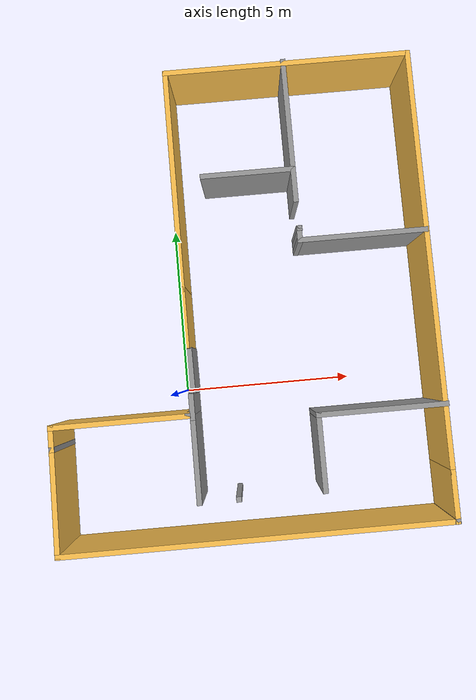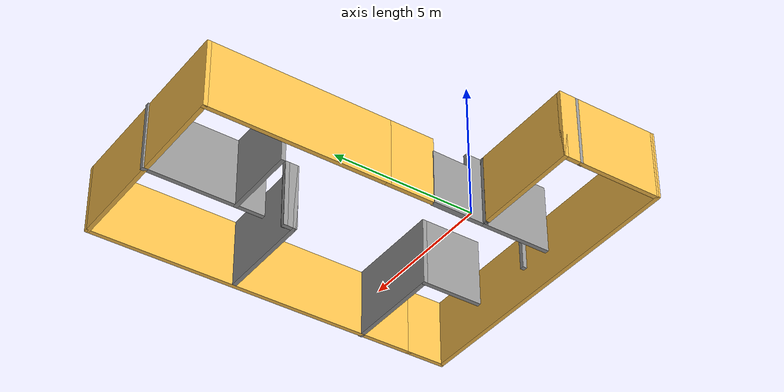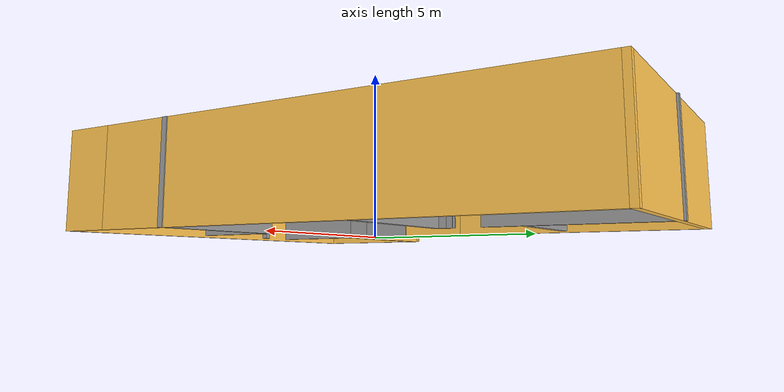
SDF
<?xml version='1.0'?>
<sdf version='1.7'>
  <model name='house-01'>
    <pose>1.82729 2.55161 0 0 -0 0</pose>
    <link name='Door_0'>
      <collision name='Door_0_Collision'>
        <geometry>
          <box>
            <size>1.32727 0.2 2</size>
          </box>
        </geometry>
        <pose>0 0 1 0 -0 0</pose>
      </collision>
      <visual name='Door_0_Visual'>
        <pose>0 0 1 0 -0 0</pose>
        <geometry>
          <box>
            <size>1.32727 0.2 2</size>
          </box>
        </geometry>
        <material>
          <script>
            <uri>file://media/materials/scripts/gazebo.material</uri>
            <name>Gazebo/Grey</name>
          </script>
        </material>
      </visual>
      <pose>-1.55494 -1.9552 0 0 -0 1.5797</pose>
    </link>
    <link name='Wall_0'>
      <collision name='Wall_0_Collision'>
        <geometry>
          <box>
            <size>3.05009 0.15 2.5</size>
          </box>
        </geometry>
        <pose>0 0 1.25 0 -0 0</pose>
      </collision>
      <visual name='Wall_0_Visual'>
        <pose>0 0 1.25 0 -0 0</pose>
        <geometry>
          <box>
            <size>3.05009 0.15 2.5</size>
          </box>
        </geometry>
        <material>
          <script>
            <uri>file://media/materials/scripts/gazebo.material</uri>
            <name>Gazebo/Grey</name>
          </script>
          <ambient>1 0.764706 0.305882 1</ambient>
        </material>
        <meta>
          <layer>0</layer>
        </meta>
      </visual>
      <pose>-5.55604 -5.30161 0 0 -0 -1.57855</pose>
    </link>
    <link name='Wall_1'>
      <collision name='Wall_1_Collision'>
        <geometry>
          <box>
            <size>11.25 0.15 2.5</size>
          </box>
        </geometry>
        <pose>0 0 1.25 0 -0 0</pose>
      </collision>
      <visual name='Wall_1_Visual'>
        <pose>0 0 1.25 0 -0 0</pose>
        <geometry>
          <box>
            <size>11.25 0.15 2.5</size>
          </box>
        </geometry>
        <material>
          <script>
            <uri>file://media/materials/scripts/gazebo.material</uri>
            <name>Gazebo/Grey</name>
          </script>
          <ambient>1 0.764706 0.305882 1</ambient>
        </material>
        <meta>
          <layer>0</layer>
        </meta>
      </visual>
      <pose>-0.017289 -6.75161 0 0 -0 0</pose>
    </link>
    <link name='Wall_19'>
      <collision name='Wall_19_Collision'>
        <geometry>
          <box>
            <size>7.25 0.15 2.5</size>
          </box>
        </geometry>
        <pose>0 0 1.25 0 -0 0</pose>
      </collision>
      <visual name='Wall_19_Visual'>
        <pose>0 0 1.25 0 -0 0</pose>
        <geometry>
          <box>
            <size>7.25 0.15 2.5</size>
          </box>
        </geometry>
        <material>
          <script>
            <uri>file://media/materials/scripts/gazebo.material</uri>
            <name>Gazebo/Grey</name>
          </script>
          <ambient>1 0.764706 0.305882 1</ambient>
        </material>
        <meta>
          <layer>0</layer>
        </meta>
      </visual>
      <pose>1.99271 6.69839 0 0 -0 3.14159</pose>
    </link>
    <link name='Wall_2'>
      <collision name='Wall_2_Collision'>
        <geometry>
          <box>
            <size>0.16 0.15 2.5</size>
          </box>
        </geometry>
        <pose>0 0 1.25 0 -0 0</pose>
      </collision>
      <visual name='Wall_2_Visual'>
        <pose>0 0 1.25 0 -0 0</pose>
        <geometry>
          <box>
            <size>0.16 0.15 2.5</size>
          </box>
        </geometry>
        <material>
          <script>
            <uri>file://media/materials/scripts/gazebo.material</uri>
            <name>Gazebo/Grey</name>
          </script>
          <ambient>1 1 1 1</ambient>
        </material>
        <meta>
          <layer>0</layer>
        </meta>
      </visual>
      <pose>5.53771 -6.75161 0 0 -0 0</pose>
    </link>
    <link name='Wall_20'>
      <collision name='Wall_20_Collision'>
        <geometry>
          <box>
            <size>6.5 0.15 2.5</size>
          </box>
        </geometry>
        <pose>0 0 1.25 0 -0 0</pose>
      </collision>
      <visual name='Wall_20_Visual'>
        <pose>0 0 1.25 0 -0 0</pose>
        <geometry>
          <box>
            <size>6.5 0.15 2.5</size>
          </box>
        </geometry>
        <material>
          <script>
            <uri>file://media/materials/scripts/gazebo.material</uri>
            <name>Gazebo/Grey</name>
          </script>
          <ambient>1 0.764706 0.305882 1</ambient>
        </material>
        <meta>
          <layer>0</layer>
        </meta>
      </visual>
      <pose>-1.55729 3.52339 0 0 -0 -1.5708</pose>
    </link>
    <link name='Wall_24'>
      <collision name='Wall_24_Collision'>
        <geometry>
          <box>
            <size>1.75 0.15 2.5</size>
          </box>
        </geometry>
        <pose>0 0 1.25 0 -0 0</pose>
      </collision>
      <visual name='Wall_24_Visual'>
        <pose>0 0 1.25 0 -0 0</pose>
        <geometry>
          <box>
            <size>1.75 0.15 2.5</size>
          </box>
        </geometry>
        <material>
          <script>
            <uri>file://media/materials/scripts/gazebo.material</uri>
            <name>Gazebo/Grey</name>
          </script>
          <ambient>1 0.764706 0.305882 1</ambient>
        </material>
        <meta>
          <layer>0</layer>
        </meta>
      </visual>
      <pose>-1.55729 -0.45161 0 0 -0 -1.5708</pose>
    </link>
    <link name='Wall_29'>
      <collision name='Wall_29_Collision'>
        <geometry>
          <box>
            <size>0.16 0.15 2.5</size>
          </box>
        </geometry>
        <pose>0 0 1.25 0 -0 0</pose>
      </collision>
      <visual name='Wall_29_Visual'>
        <pose>0 0 1.25 0 -0 0</pose>
        <geometry>
          <box>
            <size>0.16 0.15 2.5</size>
          </box>
        </geometry>
        <material>
          <script>
            <uri>file://media/materials/scripts/gazebo.material</uri>
            <name>Gazebo/Grey</name>
          </script>
          <ambient>0 0 0 1</ambient>
        </material>
        <meta>
          <layer>0</layer>
        </meta>
      </visual>
      <pose>-5.53979 -3.81786 0 0 -0 0</pose>
    </link>
    <link name='Wall_3'>
      <collision name='Wall_3_Collision'>
        <geometry>
          <box>
            <size>1.5 0.15 2.5</size>
          </box>
        </geometry>
        <pose>0 0 1.25 0 -0 0</pose>
      </collision>
      <visual name='Wall_3_Visual'>
        <pose>0 0 1.25 0 -0 0</pose>
        <geometry>
          <box>
            <size>1.5 0.15 2.5</size>
          </box>
        </geometry>
        <material>
          <script>
            <uri>file://media/materials/scripts/gazebo.material</uri>
            <name>Gazebo/Grey</name>
          </script>
          <ambient>1 0.764706 0.305882 1</ambient>
        </material>
        <meta>
          <layer>0</layer>
        </meta>
      </visual>
      <pose>5.54271 -6.07661 0 0 -0 1.5708</pose>
    </link>
    <link name='Wall_30'>
      <collision name='Wall_30_Collision'>
        <geometry>
          <box>
            <size>0.75 0.15 2.5</size>
          </box>
        </geometry>
        <pose>0 0 1.25 0 -0 0</pose>
      </collision>
      <visual name='Wall_30_Visual'>
        <pose>0 0 1.25 0 -0 0</pose>
        <geometry>
          <box>
            <size>0.75 0.15 2.5</size>
          </box>
        </geometry>
        <material>
          <script>
            <uri>file://media/materials/scripts/gazebo.material</uri>
            <name>Gazebo/Grey</name>
          </script>
          <ambient>1 0.764706 0.305882 1</ambient>
        </material>
        <meta>
          <layer>0</layer>
        </meta>
      </visual>
      <pose>-5.54479 -3.51786 0 0 -0 1.5708</pose>
    </link>
    <link name='Wall_31'>
      <collision name='Wall_31_Collision'>
        <geometry>
          <box>
            <size>4 0.15 2.5</size>
          </box>
        </geometry>
        <pose>0 0 1.25 0 -0 0</pose>
      </collision>
      <visual name='Wall_31_Visual'>
        <pose>0 0 1.25 0 -0 0</pose>
        <geometry>
          <box>
            <size>4 0.15 2.5</size>
          </box>
        </geometry>
        <material>
          <script>
            <uri>file://media/materials/scripts/gazebo.material</uri>
            <name>Gazebo/Grey</name>
          </script>
          <ambient>1 0.764706 0.305882 1</ambient>
        </material>
        <meta>
          <layer>0</layer>
        </meta>
      </visual>
      <pose>-3.61979 -3.21786 0 0 -0 0</pose>
    </link>
    <link name='Wall_32'>
      <collision name='Wall_32_Collision'>
        <geometry>
          <box>
            <size>0.15 0.15 2.5</size>
          </box>
        </geometry>
        <pose>0 0 1.25 0 -0 0</pose>
      </collision>
      <visual name='Wall_32_Visual'>
        <pose>0 0 1.25 0 -0 0</pose>
        <geometry>
          <box>
            <size>0.15 0.15 2.5</size>
          </box>
        </geometry>
        <material>
          <script>
            <uri>file://media/materials/scripts/gazebo.material</uri>
            <name>Gazebo/Grey</name>
          </script>
          <ambient>1 1 1 1</ambient>
        </material>
        <meta>
          <layer>0</layer>
        </meta>
      </visual>
      <pose>-1.69479 -3.21786 0 0 -0 0</pose>
    </link>
    <link name='Wall_33'>
      <collision name='Wall_33_Collision'>
        <geometry>
          <box>
            <size>0.16 0.15 2.5</size>
          </box>
        </geometry>
        <pose>0 0 1.25 0 -0 0</pose>
      </collision>
      <visual name='Wall_33_Visual'>
        <pose>0 0 1.25 0 -0 0</pose>
        <geometry>
          <box>
            <size>0.16 0.15 2.5</size>
          </box>
        </geometry>
        <material>
          <script>
            <uri>file://media/materials/scripts/gazebo.material</uri>
            <name>Gazebo/Grey</name>
          </script>
          <ambient>1 1 1 1</ambient>
        </material>
        <meta>
          <layer>0</layer>
        </meta>
      </visual>
      <pose>-1.68979 -3.21786 0 0 -0 0</pose>
    </link>
    <link name='Wall_34'>
      <collision name='Wall_34_Collision'>
        <geometry>
          <box>
            <size>0.16 0.15 2.5</size>
          </box>
        </geometry>
        <pose>0 0 1.25 0 -0 0</pose>
      </collision>
      <visual name='Wall_34_Visual'>
        <pose>0 0 1.25 0 -0 0</pose>
        <geometry>
          <box>
            <size>0.16 0.15 2.5</size>
          </box>
        </geometry>
        <material>
          <script>
            <uri>file://media/materials/scripts/gazebo.material</uri>
            <name>Gazebo/Grey</name>
          </script>
          <ambient>0 0 0 1</ambient>
        </material>
        <meta>
          <layer>0</layer>
        </meta>
      </visual>
      <pose>-1.68979 -3.21786 0 0 -0 3.14159</pose>
    </link>
    <link name='Wall_37'>
      <collision name='Wall_37_Collision'>
        <geometry>
          <box>
            <size>0.75 0.15 2.5</size>
          </box>
        </geometry>
        <pose>0 0 1.25 0 -0 0</pose>
      </collision>
      <visual name='Wall_37_Visual'>
        <pose>0 0 1.25 0 -0 0</pose>
        <geometry>
          <box>
            <size>0.75 0.15 2.5</size>
          </box>
        </geometry>
        <material>
          <script>
            <uri>file://media/materials/scripts/gazebo.material</uri>
            <name>Gazebo/Grey</name>
          </script>
          <ambient>1 1 1 1</ambient>
        </material>
        <meta>
          <layer>0</layer>
        </meta>
      </visual>
      <pose>-1.55003 -2.97301 0 0 -0 -1.5708</pose>
    </link>
    <link name='Wall_4'>
      <collision name='Wall_4_Collision'>
        <geometry>
          <box>
            <size>12.25 0.15 2.5</size>
          </box>
        </geometry>
        <pose>0 0 1.25 0 -0 0</pose>
      </collision>
      <visual name='Wall_4_Visual'>
        <pose>0 0 1.25 0 -0 0</pose>
        <geometry>
          <box>
            <size>12.25 0.15 2.5</size>
          </box>
        </geometry>
        <material>
          <script>
            <uri>file://media/materials/scripts/gazebo.material</uri>
            <name>Gazebo/Grey</name>
          </script>
          <ambient>1 0.764706 0.305882 1</ambient>
        </material>
        <meta>
          <layer>0</layer>
        </meta>
      </visual>
      <pose>5.54271 0.64839 0 0 -0 1.5708</pose>
    </link>
    <link name='Wall_41'>
      <collision name='Wall_41_Collision'>
        <geometry>
          <box>
            <size>2.5 0.15 2.5</size>
          </box>
        </geometry>
        <pose>0 0 1.25 0 -0 0</pose>
      </collision>
      <visual name='Wall_41_Visual'>
        <pose>0 0 1.25 0 -0 0</pose>
        <geometry>
          <box>
            <size>2.5 0.15 2.5</size>
          </box>
        </geometry>
        <material>
          <script>
            <uri>file://media/materials/scripts/gazebo.material</uri>
            <name>Gazebo/Grey</name>
          </script>
          <ambient>1 1 1 1</ambient>
        </material>
        <meta>
          <layer>0</layer>
        </meta>
      </visual>
      <pose>-1.55003 -4.44801 0 0 -0 -1.5708</pose>
    </link>
    <link name='Wall_43'>
      <collision name='Wall_43_Collision'>
        <geometry>
          <box>
            <size>0.15 0.15 2.5</size>
          </box>
        </geometry>
        <pose>0 0 1.25 0 -0 0</pose>
      </collision>
      <visual name='Wall_43_Visual'>
        <pose>0 0 1.25 0 -0 0</pose>
        <geometry>
          <box>
            <size>0.15 0.15 2.5</size>
          </box>
        </geometry>
        <material>
          <script>
            <uri>file://media/materials/scripts/gazebo.material</uri>
            <name>Gazebo/Grey</name>
          </script>
          <ambient>1 1 1 1</ambient>
        </material>
        <meta>
          <layer>0</layer>
        </meta>
      </visual>
      <pose>-0.450029 -5.62301 0 0 -0 0</pose>
    </link>
    <link name='Wall_48'>
      <collision name='Wall_48_Collision'>
        <geometry>
          <box>
            <size>3.75 0.15 2.5</size>
          </box>
        </geometry>
        <pose>0 0 1.25 0 -0 0</pose>
      </collision>
      <visual name='Wall_48_Visual'>
        <pose>0 0 1.25 0 -0 0</pose>
        <geometry>
          <box>
            <size>3.75 0.15 2.5</size>
          </box>
        </geometry>
        <material>
          <script>
            <uri>file://media/materials/scripts/gazebo.material</uri>
            <name>Gazebo/Grey</name>
          </script>
          <ambient>1 1 1 1</ambient>
        </material>
        <meta>
          <layer>0</layer>
        </meta>
      </visual>
      <pose>3.76787 -3.50356 0 0 -0 3.14159</pose>
    </link>
    <link name='Wall_49'>
      <collision name='Wall_49_Collision'>
        <geometry>
          <box>
            <size>2.25 0.15 2.5</size>
          </box>
        </geometry>
        <pose>0 0 1.25 0 -0 0</pose>
      </collision>
      <visual name='Wall_49_Visual'>
        <pose>0 0 1.25 0 -0 0</pose>
        <geometry>
          <box>
            <size>2.25 0.15 2.5</size>
          </box>
        </geometry>
        <material>
          <script>
            <uri>file://media/materials/scripts/gazebo.material</uri>
            <name>Gazebo/Grey</name>
          </script>
          <ambient>1 1 1 1</ambient>
        </material>
        <meta>
          <layer>0</layer>
        </meta>
      </visual>
      <pose>1.96787 -4.55356 0 0 -0 -1.5708</pose>
    </link>
    <link name='Wall_51'>
      <collision name='Wall_51_Collision'>
        <geometry>
          <box>
            <size>3.75 0.15 2.5</size>
          </box>
        </geometry>
        <pose>0 0 1.25 0 -0 0</pose>
      </collision>
      <visual name='Wall_51_Visual'>
        <pose>0 0 1.25 0 -0 0</pose>
        <geometry>
          <box>
            <size>3.75 0.15 2.5</size>
          </box>
        </geometry>
        <material>
          <script>
            <uri>file://media/materials/scripts/gazebo.material</uri>
            <name>Gazebo/Grey</name>
          </script>
          <ambient>1 1 1 1</ambient>
        </material>
        <meta>
          <layer>0</layer>
        </meta>
      </visual>
      <pose>3.71271 1.46811 0 0 -0 3.14159</pose>
    </link>
    <link name='Wall_52'>
      <collision name='Wall_52_Collision'>
        <geometry>
          <box>
            <size>0.5 0.15 2.5</size>
          </box>
        </geometry>
        <pose>0 0 1.25 0 -0 0</pose>
      </collision>
      <visual name='Wall_52_Visual'>
        <pose>0 0 1.25 0 -0 0</pose>
        <geometry>
          <box>
            <size>0.5 0.15 2.5</size>
          </box>
        </geometry>
        <material>
          <script>
            <uri>file://media/materials/scripts/gazebo.material</uri>
            <name>Gazebo/Grey</name>
          </script>
          <ambient>1 1 1 1</ambient>
        </material>
        <meta>
          <layer>0</layer>
        </meta>
      </visual>
      <pose>1.91271 1.64311 0 0 -0 1.5708</pose>
    </link>
    <link name='Wall_53'>
      <collision name='Wall_53_Collision'>
        <geometry>
          <box>
            <size>0.16 0.15 2.5</size>
          </box>
        </geometry>
        <pose>0 0 1.25 0 -0 0</pose>
      </collision>
      <visual name='Wall_53_Visual'>
        <pose>0 0 1.25 0 -0 0</pose>
        <geometry>
          <box>
            <size>0.16 0.15 2.5</size>
          </box>
        </geometry>
        <material>
          <script>
            <uri>file://media/materials/scripts/gazebo.material</uri>
            <name>Gazebo/Grey</name>
          </script>
          <ambient>1 1 1 1</ambient>
        </material>
        <meta>
          <layer>0</layer>
        </meta>
      </visual>
      <pose>1.9177 1.81811 0 0 -0 0</pose>
    </link>
    <link name='Wall_54'>
      <collision name='Wall_54_Collision'>
        <geometry>
          <box>
            <size>0.16 0.15 2.5</size>
          </box>
        </geometry>
        <pose>0 0 1.25 0 -0 0</pose>
      </collision>
      <visual name='Wall_54_Visual'>
        <pose>0 0 1.25 0 -0 0</pose>
        <geometry>
          <box>
            <size>0.16 0.15 2.5</size>
          </box>
        </geometry>
        <material>
          <script>
            <uri>file://media/materials/scripts/gazebo.material</uri>
            <name>Gazebo/Grey</name>
          </script>
          <ambient>0 0 0 1</ambient>
        </material>
        <meta>
          <layer>0</layer>
        </meta>
      </visual>
      <pose>1.92771 1.81811 0 0 -0 0</pose>
    </link>
    <link name='Wall_56'>
      <collision name='Wall_56_Collision'>
        <geometry>
          <box>
            <size>4.25 0.15 2.5</size>
          </box>
        </geometry>
        <pose>0 0 1.25 0 -0 0</pose>
      </collision>
      <visual name='Wall_56_Visual'>
        <pose>0 0 1.25 0 -0 0</pose>
        <geometry>
          <box>
            <size>4.25 0.15 2.5</size>
          </box>
        </geometry>
        <material>
          <script>
            <uri>file://media/materials/scripts/gazebo.material</uri>
            <name>Gazebo/Grey</name>
          </script>
          <ambient>1 1 1 1</ambient>
        </material>
        <meta>
          <layer>0</layer>
        </meta>
      </visual>
      <pose>1.89974 4.70219 0 0 -0 1.5708</pose>
    </link>
    <link name='Wall_60'>
      <collision name='Wall_60_Collision'>
        <geometry>
          <box>
            <size>2.75 0.15 2.5</size>
          </box>
        </geometry>
        <pose>0 0 1.25 0 -0 0</pose>
      </collision>
      <visual name='Wall_60_Visual'>
        <pose>0 0 1.25 0 -0 0</pose>
        <geometry>
          <box>
            <size>2.75 0.15 2.5</size>
          </box>
        </geometry>
        <material>
          <script>
            <uri>file://media/materials/scripts/gazebo.material</uri>
            <name>Gazebo/Grey</name>
          </script>
          <ambient>1 1 1 1</ambient>
        </material>
        <meta>
          <layer>0</layer>
        </meta>
      </visual>
      <pose>0.58498 3.55238 0 0 -0 3.14159</pose>
    </link>
    <static>1</static>
  </model>
</sdf>
